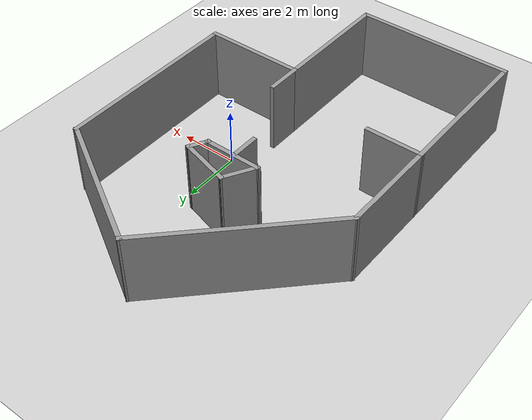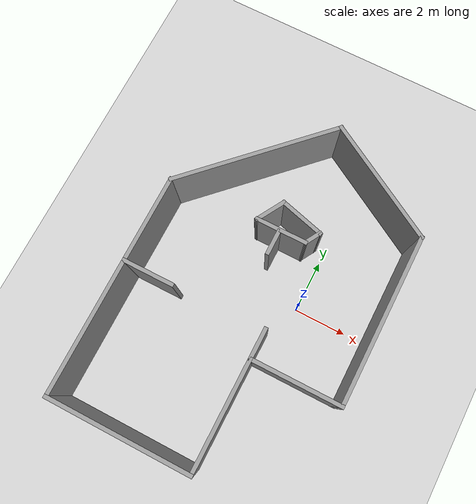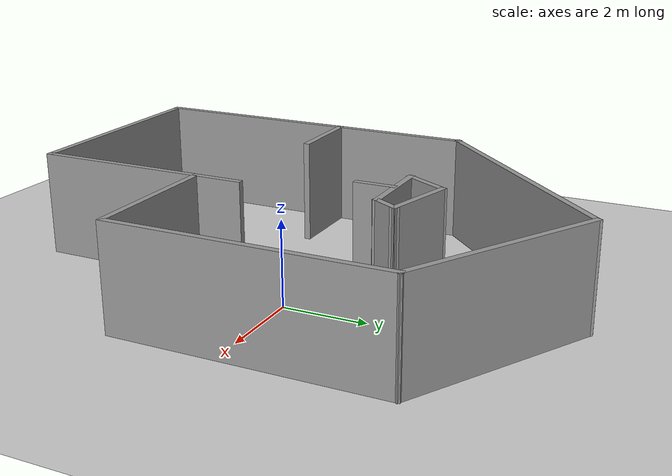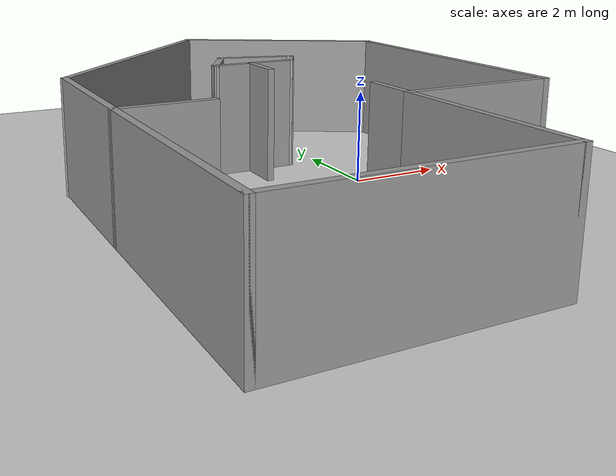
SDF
<sdf version="1.7">
 <world name="default">
  <light name="sun" type="directional">
   <pose>0 0 10 0 -0 0</pose>
   <diffuse>0.8 0.8 0.8 1</diffuse>
   <specular>0.2 0.2 0.2 1</specular>
   <attenuation>
    <range>1000</range>
    <constant>0.9</constant>
    <linear>0.01</linear>
    <quadratic>0.001</quadratic>
   </attenuation>
   <direction>-0.5 0.1 -0.9</direction>
   <spot><inner_angle>0</inner_angle><outer_angle>0</outer_angle><falloff>0</falloff></spot>
  </light>
  <model name="ground_plane">
   <static>1</static>
   <link name="link">
    <collision name="collision">
     <geometry><plane><normal>0 0 1</normal><size>100 100</size></plane></geometry>
     <surface>
      <contact><collide_bitmask>65535</collide_bitmask></contact>
      <friction><ode><mu>100</mu><mu2>50</mu2></ode></friction>
     </surface>
    </collision>
    <visual name="visual">
     <cast_shadows>0</cast_shadows>
     <geometry><plane><normal>0 0 1</normal><size>100 100</size></plane></geometry>
     <material>
      <script><uri>file://media/materials/scripts/gazebo.material</uri><name>Gazebo/Grey</name></script>
     </material>
    </visual>
   </link>
  </model>
  <gravity>0 0 -9.8</gravity>
  <magnetic_field>6e-06 2.3e-05 -4.2e-05</magnetic_field>
  <atmosphere type="adiabatic"/>
  <physics type="ode">
   <max_step_size>0.001</max_step_size>
   <real_time_factor>1</real_time_factor>
   <real_time_update_rate>1000</real_time_update_rate>
  </physics>
  <scene><ambient>0.4 0.4 0.4 1</ambient><background>0.7 0.7 0.7 1</background><shadows>1</shadows></scene>
  <audio><device>default</device></audio>
  <spherical_coordinates>
   <surface_model>EARTH_WGS84</surface_model>
   <latitude_deg>0</latitude_deg>
   <longitude_deg>0</longitude_deg>
   <elevation>0</elevation>
   <heading_deg>0</heading_deg>
  </spherical_coordinates>
  <model name="Untitled">
   <pose>-1.60698 -0.156967 0 0 -0 0</pose>
   <link name="Wall_0">
    <collision name="Wall_0_Collision">
     <geometry><box><size>5.25 0.15 2.5</size></box></geometry>
     <pose>0 0 1.25 0 -0 0</pose>
    </collision>
    <visual name="Wall_0_Visual">
     <pose>0 0 1.25 0 -0 0</pose>
     <geometry><box><size>5.25 0.15 2.5</size></box></geometry>
     <material>
      <script><uri>file://media/materials/scripts/gazebo.material</uri><name>Gazebo/Grey</name></script>
      <ambient>1 1 1 1</ambient>
     </material>
     <meta><layer>0</layer></meta>
    </visual>
    <pose>-4.35302 -3.90303 0 0 -0 -1.5708</pose>
   </link>
   <link name="Wall_1">
    <collision name="Wall_1_Collision">
     <geometry><box><size>5.5 0.15 2.5</size></box></geometry>
     <pose>0 0 1.25 0 -0 0</pose>
    </collision>
    <visual name="Wall_1_Visual">
     <pose>0 0 1.25 0 -0 0</pose>
     <geometry><box><size>5.5 0.15 2.5</size></box></geometry>
     <material>
      <script><uri>file://media/materials/scripts/gazebo.material</uri><name>Gazebo/Grey</name></script>
      <ambient>1 1 1 1</ambient>
     </material>
     <meta><layer>0</layer></meta>
    </visual>
    <pose>-1.67802 -6.45303 0 0 -0 0</pose>
   </link>
   <link name="Wall_10">
    <collision name="Wall_10_Collision">
     <geometry><box><size>1.25 0.15 2.5</size></box></geometry>
     <pose>0 0 1.25 0 -0 0</pose>
    </collision>
    <visual name="Wall_10_Visual">
     <pose>0 0 1.25 0 -0 0</pose>
     <geometry><box><size>1.25 0.15 2.5</size></box></geometry>
     <material>
      <script><uri>file://media/materials/scripts/gazebo.material</uri><name>Gazebo/Grey</name></script>
      <ambient>1 1 1 1</ambient>
     </material>
     <meta><layer>0</layer></meta>
    </visual>
    <pose>-0.706278 2.49424 0 0 -0 -2.0944</pose>
   </link>
   <link name="Wall_11">
    <collision name="Wall_11_Collision">
     <geometry><box><size>2 0.15 2.5</size></box></geometry>
     <pose>0 0 1.25 0 -0 0</pose>
    </collision>
    <visual name="Wall_11_Visual">
     <pose>0 0 1.25 0 -0 0</pose>
     <geometry><box><size>2 0.15 2.5</size></box></geometry>
     <material>
      <script><uri>file://media/materials/scripts/gazebo.material</uri><name>Gazebo/Grey</name></script>
      <ambient>1 1 1 1</ambient>
     </material>
     <meta><layer>0</layer></meta>
    </visual>
    <pose>-0.056278 2.01793 0 0 -0 0</pose>
   </link>
   <link name="Wall_12">
    <collision name="Wall_12_Collision">
     <geometry><box><size>0.75 0.15 2.5</size></box></geometry>
     <pose>0 0 1.25 0 -0 0</pose>
    </collision>
    <visual name="Wall_12_Visual">
     <pose>0 0 1.25 0 -0 0</pose>
     <geometry><box><size>0.75 0.15 2.5</size></box></geometry>
     <material>
      <script><uri>file://media/materials/scripts/gazebo.material</uri><name>Gazebo/Grey</name></script>
      <ambient>1 1 1 1</ambient>
     </material>
     <meta><layer>0</layer></meta>
    </visual>
    <pose>1.01872 2.27774 0 0 -0 1.0472</pose>
   </link>
   <link name="Wall_13">
    <collision name="Wall_13_Collision">
     <geometry><box><size>1.80756 0.15 2.5</size></box></geometry>
     <pose>0 0 1.25 0 -0 0</pose>
    </collision>
    <visual name="Wall_13_Visual">
     <pose>0 0 1.25 0 -0 0</pose>
     <geometry><box><size>1.80756 0.15 2.5</size></box></geometry>
     <material>
      <script><uri>file://media/materials/scripts/gazebo.material</uri><name>Gazebo/Grey</name></script>
      <ambient>1 1 1 1</ambient>
     </material>
     <meta><layer>0</layer></meta>
    </visual>
    <pose>0.368722 2.75405 0 0 -0 2.87729</pose>
   </link>
   <link name="Wall_15">
    <collision name="Wall_15_Collision">
     <geometry><box><size>1.25 0.15 2.5</size></box></geometry>
     <pose>0 0 1.25 0 -0 0</pose>
    </collision>
    <visual name="Wall_15_Visual">
     <pose>0 0 1.25 0 -0 0</pose>
     <geometry><box><size>1.25 0.15 2.5</size></box></geometry>
     <material>
      <script><uri>file://media/materials/scripts/gazebo.material</uri><name>Gazebo/Grey</name></script>
      <ambient>1 1 1 1</ambient>
     </material>
     <meta><layer>0</layer></meta>
    </visual>
    <pose>0.996983 -1.80303 0 0 -0 1.5708</pose>
   </link>
   <link name="Wall_17">
    <collision name="Wall_17_Collision">
     <geometry><box><size>1 0.15 2.5</size></box></geometry>
     <pose>0 0 1.25 0 -0 0</pose>
    </collision>
    <visual name="Wall_17_Visual">
     <pose>0 0 1.25 0 -0 0</pose>
     <geometry><box><size>1 0.15 2.5</size></box></geometry>
     <material>
      <script><uri>file://media/materials/scripts/gazebo.material</uri><name>Gazebo/Grey</name></script>
      <ambient>1 1 1 1</ambient>
     </material>
     <meta><layer>0</layer></meta>
    </visual>
    <pose>-0.113878 1.54046 0 0 -0 -1.5708</pose>
   </link>
   <link name="Wall_2">
    <collision name="Wall_2_Collision">
     <geometry><box><size>4.25 0.15 2.5</size></box></geometry>
     <pose>0 0 1.25 0 -0 0</pose>
    </collision>
    <visual name="Wall_2_Visual">
     <pose>0 0 1.25 0 -0 0</pose>
     <geometry><box><size>4.25 0.15 2.5</size></box></geometry>
     <material>
      <script><uri>file://media/materials/scripts/gazebo.material</uri><name>Gazebo/Grey</name></script>
      <ambient>1 1 1 1</ambient>
     </material>
     <meta><layer>0</layer></meta>
    </visual>
    <pose>0.996983 -4.40303 0 0 -0 1.5708</pose>
   </link>
   <link name="Wall_3">
    <collision name="Wall_3_Collision">
     <geometry><box><size>3.5 0.15 2.5</size></box></geometry>
     <pose>0 0 1.25 0 -0 0</pose>
    </collision>
    <visual name="Wall_3_Visual">
     <pose>0 0 1.25 0 -0 0</pose>
     <geometry><box><size>3.5 0.15 2.5</size></box></geometry>
     <material>
      <script><uri>file://media/materials/scripts/gazebo.material</uri><name>Gazebo/Grey</name></script>
      <ambient>1 1 1 1</ambient>
     </material>
     <meta><layer>0</layer></meta>
    </visual>
    <pose>2.67198 -2.35303 0 0 -0 0</pose>
   </link>
   <link name="Wall_4">
    <collision name="Wall_4_Collision">
     <geometry><box><size>6.5 0.15 2.5</size></box></geometry>
     <pose>0 0 1.25 0 -0 0</pose>
    </collision>
    <visual name="Wall_4_Visual">
     <pose>0 0 1.25 0 -0 0</pose>
     <geometry><box><size>6.5 0.15 2.5</size></box></geometry>
     <material>
      <script><uri>file://media/materials/scripts/gazebo.material</uri><name>Gazebo/Grey</name></script>
      <ambient>1 1 1 1</ambient>
     </material>
     <meta><layer>0</layer></meta>
    </visual>
    <pose>4.34698 0.821967 0 0 -0 1.5708</pose>
   </link>
   <link name="Wall_5">
    <collision name="Wall_5_Collision">
     <geometry><box><size>5 0.15 2.5</size></box></geometry>
     <pose>0 0 1.25 0 -0 0</pose>
    </collision>
    <visual name="Wall_5_Visual">
     <pose>0 0 1.25 0 -0 0</pose>
     <geometry><box><size>5 0.15 2.5</size></box></geometry>
     <material>
      <script><uri>file://media/materials/scripts/gazebo.material</uri><name>Gazebo/Grey</name></script>
      <ambient>1 1 1 1</ambient>
     </material>
     <meta><layer>0</layer></meta>
    </visual>
    <pose>2.24687 5.20947 0 0 -0 2.61799</pose>
   </link>
   <link name="Wall_6">
    <collision name="Wall_6_Collision">
     <geometry><box><size>6.5 0.15 2.5</size></box></geometry>
     <pose>0 0 1.25 0 -0 0</pose>
    </collision>
    <visual name="Wall_6_Visual">
     <pose>0 0 1.25 0 -0 0</pose>
     <geometry><box><size>6.5 0.15 2.5</size></box></geometry>
     <material>
      <script><uri>file://media/materials/scripts/gazebo.material</uri><name>Gazebo/Grey</name></script>
      <ambient>1 1 1 1</ambient>
     </material>
     <meta><layer>0</layer></meta>
    </visual>
    <pose>-2.0983 4.1769 0 0 -0 -2.35619</pose>
   </link>
   <link name="Wall_7">
    <collision name="Wall_7_Collision">
     <geometry><box><size>3.43489 0.15 2.5</size></box></geometry>
     <pose>0 0 1.25 0 -0 0</pose>
    </collision>
    <visual name="Wall_7_Visual">
     <pose>0 0 1.25 0 -0 0</pose>
     <geometry><box><size>3.43489 0.15 2.5</size></box></geometry>
     <material>
      <script><uri>file://media/materials/scripts/gazebo.material</uri><name>Gazebo/Grey</name></script>
      <ambient>1 1 1 1</ambient>
     </material>
     <meta><layer>0</layer></meta>
    </visual>
    <pose>-4.34819 0.289403 0 0 -0 -1.57373</pose>
   </link>
   <link name="Wall_8">
    <collision name="Wall_8_Collision">
     <geometry><box><size>2 0.15 2.5</size></box></geometry>
     <pose>0 0 1.25 0 -0 0</pose>
    </collision>
    <visual name="Wall_8_Visual">
     <pose>0 0 1.25 0 -0 0</pose>
     <geometry><box><size>2 0.15 2.5</size></box></geometry>
     <material>
      <script><uri>file://media/materials/scripts/gazebo.material</uri><name>Gazebo/Grey</name></script>
      <ambient>1 1 1 1</ambient>
     </material>
     <meta><layer>0</layer></meta>
    </visual>
    <pose>-3.42802 -1.35303 0 0 -0 0</pose>
   </link>
   <static>1</static>
  </model>
 </world>
</sdf>
